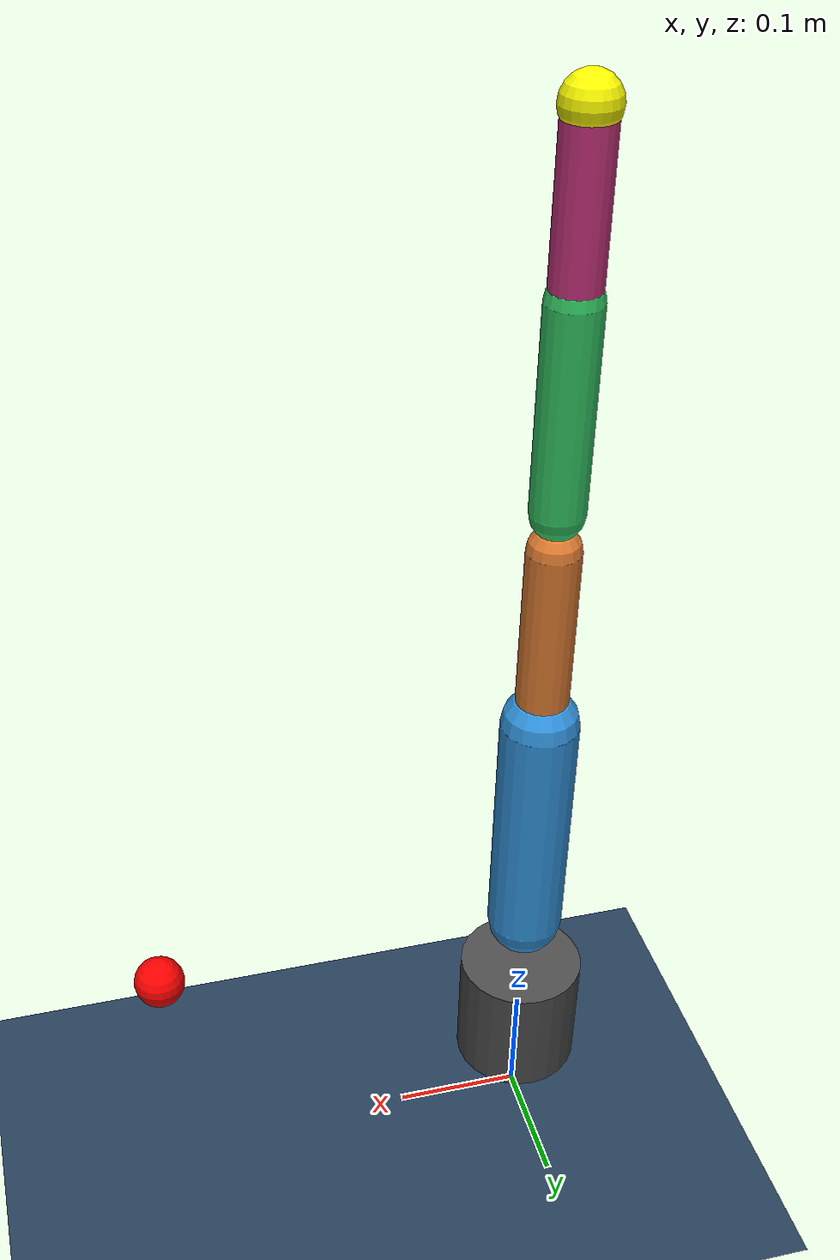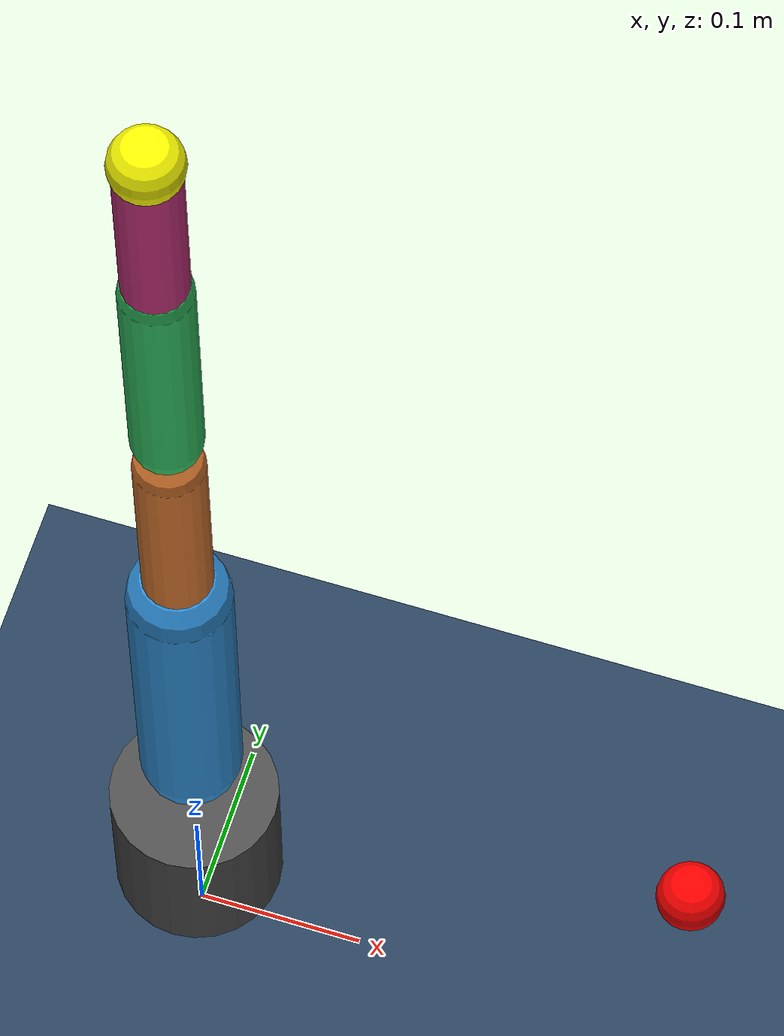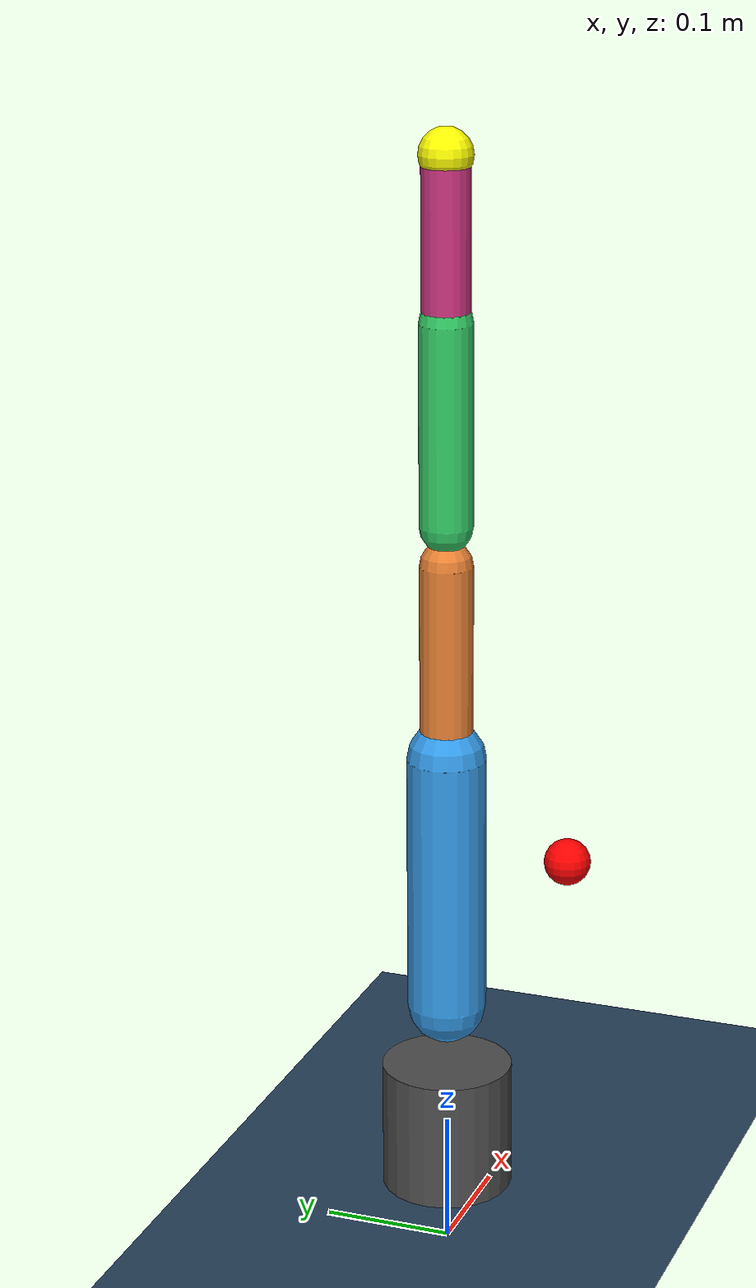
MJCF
<mujoco model="robot_arm">
 <compiler angle="radian"/>

 <option timestep="0.002" gravity="0 0 -9.81"/>

 <asset>
  <texture type="skybox" builtin="gradient" rgb1="0.3 0.5 0.7" rgb2="0 0 0" width="512" height="512"/>
  <texture name="grid" type="2d" builtin="checker" rgb1="0.1 0.2 0.3" rgb2="0.2 0.3 0.4" width="512" height="512"/>
  <material name="grid" texture="grid" texrepeat="1 1" texuniform="true" reflectance="0.2"/>
 </asset>

  <worldbody>
   <light pos="0 0 2" dir="0 0 -1" diffuse="1 1 1"/>
   <geom name="floor" size="0 0 0.5" type="plane" material="grid" condim="3"/>

   <!-- Base -->
   <body name="base" pos="0 0 0.1">
    <geom type="cylinder" size="0.05 0.05" rgba="0.3 0.3 0.3 1"/>
    <joint name="joint1" type="hinge" axis="0 0 1" range="-3.14 3.14" damping="1"/>

    <!-- Link 1 -->
    <body name="link1" pos="0 0 0.1">
     <geom type="capsule" size="0.03" fromto="0 0 0 0 0 0.2" rgba="0.2 0.6 0.9 1"/>
     <joint name="joint2" type="hinge" axis="0 1 0" range="-1.57 1.57" damping="1"/>

     <!-- Link 2 -->
     <body name="link2" pos="0 0 0.2">
      <geom type="capsule" size="0.02" fromto="0 0 0 0 0 0.15" rgba="0.9 0.5 0.2 1"/>
      <joint name="joint3" type="hinge" axis="0 1 0" range="-1.57 1.57" damping="0.8"/>

      <!-- Link 3 -->
      <body name="link3" pos="0 0 0.18">
       <geom type="capsule" size="0.02" fromto="0 0 0 0 0 0.15" rgba="0.2 0.8 0.4 1"/>
       <joint name="joint4" type="hinge" axis="0 0 1" range="-3.14 3.14" damping="0.5"/>

       <!-- Link 4 -->
       <body name="link4" pos="0 0 0.15">
        <geom type="capsule" size="0.018" fromto="0 0 0 0 0 0.12" rgba="0.8 0.2 0.5 1"/>
        <joint name="joint5" type="hinge" axis="0 1 0" range="-1.57 1.57" damping="0.4"/>

        <!-- End Effector -->
        <body name="end_effector" pos="0 0 0.12">
         <geom type="sphere" size="0.02" rgba="1 1 0 1"/>
         <site name="ee_site" pos="0 0 0" size="0.01"/>
        </body>
       </body>
      </body>
     </body>
    </body>
   </body>

   <!-- Target Marker -->
    <body name="target" pos="0.3 0 0.2">
     <geom type="sphere" size="0.02" rgba="1 0 0 1" contype="0" conaffinity="0"/>
     <site name="target_site" pos="0 0 0" size="0.01"/>
    </body>
   </worldbody>

    <actuator>
        <motor name="act1" joint="joint1" ctrlrange="-1 1" gear="100" ctrllimited="true"/>
        <motor name="act2" joint="joint2" ctrlrange="-1 1" gear="100" ctrllimited="true"/>
        <motor name="act3" joint="joint3" ctrlrange="-1 1" gear="100" ctrllimited="true"/>
        <motor name="act4" joint="joint4" ctrlrange="-1 1" gear="100" ctrllimited="true"/>
        <motor name="act5" joint="joint5" ctrlrange="-1 1" gear="100" ctrllimited="true"/>
    </actuator>
</mujoco>
